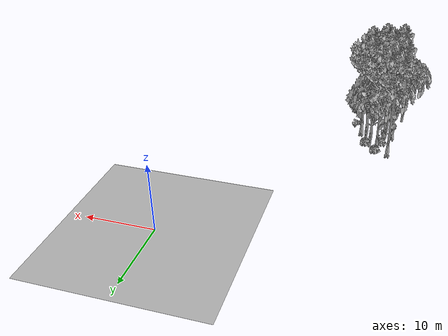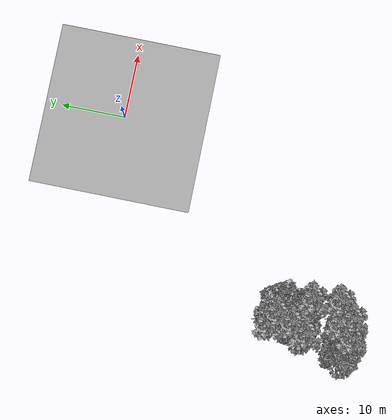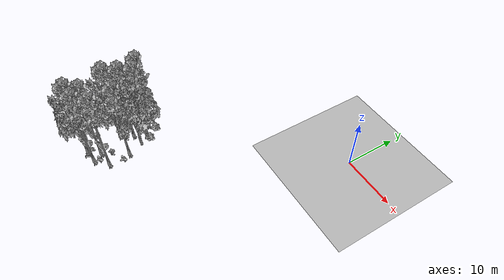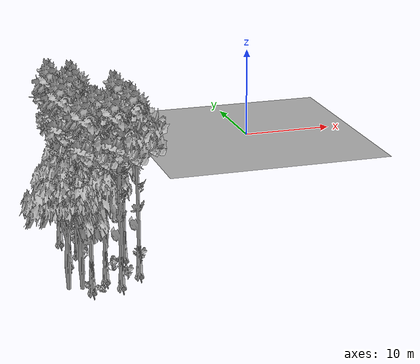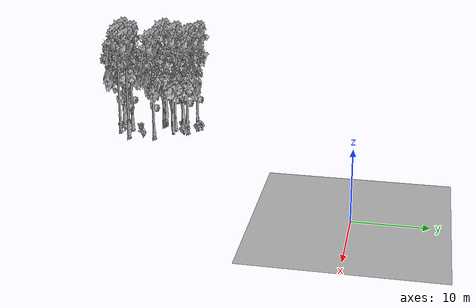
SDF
<sdf version="1.7">
 <world name="default">
  <model name="ground_plane">
   <static>1</static>
   <link name="link">
    <collision name="collision">
     <pose>-50 0 0 0 -0 0</pose>
     <geometry><plane><normal>0 0 1</normal><size>80 80</size></plane></geometry>
     <surface><contact><ode><min_depth>0.01</min_depth><max_vel>0</max_vel></ode></contact></surface>
    </collision>
    <visual name="grass">
     <cast_shadows>0</cast_shadows>
     <geometry>
      <mesh>
       <scale>0.46714285714285714 0.46714285714285714 0.1</scale>
       <uri>file://grass_plane/meshes/grass_plane.dae</uri>
      </mesh>
     </geometry>
    </visual>
   </link>
  </model>
  <model name="Tree 18">
   <static>1</static>
   <pose>-25.525492926385198 -28.110148327706312 0 1.57079 -0 0</pose>
   <link name="link">
    <collision name="collision">
     <geometry><mesh><scale>3.5 5 3.5</scale><uri>model://tree_9/meshes/tree_9.obj</uri></mesh></geometry>
    </collision>
    <visual name="visual">
     <geometry><mesh><scale>3.5 5 3.5</scale><uri>model://tree_9/meshes/tree_9.obj</uri></mesh></geometry>
    </visual>
   </link>
  </model>
  <model name="Tree 51">
   <static>1</static>
   <pose>-25.332654843398675 -37.10604299369229 0 1.57079 -0 0</pose>
   <link name="link">
    <collision name="collision">
     <geometry><mesh><scale>3.5 5 3.5</scale><uri>model://tree_9/meshes/tree_9.obj</uri></mesh></geometry>
    </collision>
    <visual name="visual">
     <geometry><mesh><scale>3.5 5 3.5</scale><uri>model://tree_9/meshes/tree_9.obj</uri></mesh></geometry>
    </visual>
   </link>
  </model>
  <model name="Tree 85">
   <static>1</static>
   <pose>-26.419997721781822 -30.37566426830179 0 1.57079 -0 0</pose>
   <link name="link">
    <collision name="collision">
     <geometry><mesh><scale>3.5 5 3.5</scale><uri>model://tree_9/meshes/tree_9.obj</uri></mesh></geometry>
    </collision>
    <visual name="visual">
     <geometry><mesh><scale>3.5 5 3.5</scale><uri>model://tree_9/meshes/tree_9.obj</uri></mesh></geometry>
    </visual>
   </link>
  </model>
  <model name="Tree 91">
   <static>1</static>
   <pose>-24.302952717097057 -38.77902548727643 0 1.57079 -0 0</pose>
   <link name="link">
    <collision name="collision">
     <geometry><mesh><scale>3.5 5 3.5</scale><uri>model://tree_9/meshes/tree_9.obj</uri></mesh></geometry>
    </collision>
    <visual name="visual">
     <geometry><mesh><scale>3.5 5 3.5</scale><uri>model://tree_9/meshes/tree_9.obj</uri></mesh></geometry>
    </visual>
   </link>
  </model>
  <model name="Tree 110">
   <static>1</static>
   <pose>-27.829285310182065 -38.66490837212489 0 1.57079 -0 0</pose>
   <link name="link">
    <collision name="collision">
     <geometry><mesh><scale>3.5 5 3.5</scale><uri>model://tree_2/meshes/tree_2.obj</uri></mesh></geometry>
    </collision>
    <visual name="visual">
     <geometry><mesh><scale>3.5 5 3.5</scale><uri>model://tree_2/meshes/tree_2.obj</uri></mesh></geometry>
    </visual>
   </link>
  </model>
  <model name="Tree 201">
   <static>1</static>
   <pose>-26.98331747797536 -39.04896697831635 0 1.57079 -0 0</pose>
   <link name="link">
    <collision name="collision">
     <geometry><mesh><scale>3.5 5 3.5</scale><uri>model://tree_9/meshes/tree_9.obj</uri></mesh></geometry>
    </collision>
    <visual name="visual">
     <geometry><mesh><scale>3.5 5 3.5</scale><uri>model://tree_9/meshes/tree_9.obj</uri></mesh></geometry>
    </visual>
   </link>
  </model>
  <model name="Tree 235">
   <static>1</static>
   <pose>-23.675036633664273 -29.950213161639425 0 1.57079 -0 0</pose>
   <link name="link">
    <collision name="collision">
     <geometry><mesh><scale>3.5 5 3.5</scale><uri>model://tree_2/meshes/tree_2.obj</uri></mesh></geometry>
    </collision>
    <visual name="visual">
     <geometry><mesh><scale>3.5 5 3.5</scale><uri>model://tree_2/meshes/tree_2.obj</uri></mesh></geometry>
    </visual>
   </link>
  </model>
  <model name="Tree 255">
   <static>1</static>
   <pose>-22.18213021348137 -36.70862447968744 0 1.57079 -0 0</pose>
   <link name="link">
    <collision name="collision">
     <geometry><mesh><scale>3.5 5 3.5</scale><uri>model://tree_9/meshes/tree_9.obj</uri></mesh></geometry>
    </collision>
    <visual name="visual">
     <geometry><mesh><scale>3.5 5 3.5</scale><uri>model://tree_9/meshes/tree_9.obj</uri></mesh></geometry>
    </visual>
   </link>
  </model>
  <model name="Tree 300">
   <static>1</static>
   <pose>-24.500904296040687 -28.474329627272592 0 1.57079 -0 0</pose>
   <link name="link">
    <collision name="collision">
     <geometry><mesh><scale>3.5 5 3.5</scale><uri>model://tree_2/meshes/tree_2.obj</uri></mesh></geometry>
    </collision>
    <visual name="visual">
     <geometry><mesh><scale>3.5 5 3.5</scale><uri>model://tree_2/meshes/tree_2.obj</uri></mesh></geometry>
    </visual>
   </link>
  </model>
  <model name="Tree 369">
   <static>1</static>
   <pose>-27.355893987682144 -26.951729278231387 0 1.57079 -0 0</pose>
   <link name="link">
    <collision name="collision">
     <geometry><mesh><scale>3.5 5 3.5</scale><uri>model://tree_9/meshes/tree_9.obj</uri></mesh></geometry>
    </collision>
    <visual name="visual">
     <geometry><mesh><scale>3.5 5 3.5</scale><uri>model://tree_9/meshes/tree_9.obj</uri></mesh></geometry>
    </visual>
   </link>
  </model>
  <model name="Tree 378">
   <static>1</static>
   <pose>-22.575694558112637 -32.746667601525616 0 1.57079 -0 0</pose>
   <link name="link">
    <collision name="collision">
     <geometry><mesh><scale>3.5 5 3.5</scale><uri>model://tree_9/meshes/tree_9.obj</uri></mesh></geometry>
    </collision>
    <visual name="visual">
     <geometry><mesh><scale>3.5 5 3.5</scale><uri>model://tree_9/meshes/tree_9.obj</uri></mesh></geometry>
    </visual>
   </link>
  </model>
  <model name="Tree 545">
   <static>1</static>
   <pose>-28.97283358777635 -38.39211539578997 0 1.57079 -0 0</pose>
   <link name="link">
    <collision name="collision">
     <geometry><mesh><scale>3.5 5 3.5</scale><uri>model://tree_2/meshes/tree_2.obj</uri></mesh></geometry>
    </collision>
    <visual name="visual">
     <geometry><mesh><scale>3.5 5 3.5</scale><uri>model://tree_2/meshes/tree_2.obj</uri></mesh></geometry>
    </visual>
   </link>
  </model>
  <model name="Tree 557">
   <static>1</static>
   <pose>-26.71970151706096 -31.851340997629663 0 1.57079 -0 0</pose>
   <link name="link">
    <collision name="collision">
     <geometry><mesh><scale>3.5 5 3.5</scale><uri>model://tree_2/meshes/tree_2.obj</uri></mesh></geometry>
    </collision>
    <visual name="visual">
     <geometry><mesh><scale>3.5 5 3.5</scale><uri>model://tree_2/meshes/tree_2.obj</uri></mesh></geometry>
    </visual>
   </link>
  </model>
  <model name="Tree 569">
   <static>1</static>
   <pose>-27.644495536950142 -32.60351999426738 0 1.57079 -0 0</pose>
   <link name="link">
    <collision name="collision">
     <geometry><mesh><scale>3.5 5 3.5</scale><uri>model://tree_9/meshes/tree_9.obj</uri></mesh></geometry>
    </collision>
    <visual name="visual">
     <geometry><mesh><scale>3.5 5 3.5</scale><uri>model://tree_9/meshes/tree_9.obj</uri></mesh></geometry>
    </visual>
   </link>
  </model>
  <model name="Bush 27">
   <static>1</static>
   <pose>-26.258543405906515 -32.01921604301248 0 1.57079 -0 0</pose>
   <link name="link">
    <collision name="collision">
     <geometry><mesh><scale>2 2 2</scale><uri>model://bush_4/meshes/bush_4.obj</uri></mesh></geometry>
     <surface><contact><collide_without_contact>false</collide_without_contact></contact></surface>
    </collision>
    <visual name="visual">
     <geometry><mesh><scale>2 2 2</scale><uri>model://bush_4/meshes/bush_4.obj</uri></mesh></geometry>
    </visual>
   </link>
  </model>
  <model name="Bush 180">
   <static>1</static>
   <pose>-25.424793475125142 -26.32336520158045 0 1.57079 -0 0</pose>
   <link name="link">
    <collision name="collision">
     <geometry><mesh><scale>2 2 2</scale><uri>model://bush_1/meshes/bush_1.obj</uri></mesh></geometry>
     <surface><contact><collide_without_contact>false</collide_without_contact></contact></surface>
    </collision>
    <visual name="visual">
     <geometry><mesh><scale>2 2 2</scale><uri>model://bush_1/meshes/bush_1.obj</uri></mesh></geometry>
    </visual>
   </link>
  </model>
  <model name="Bush 200">
   <static>1</static>
   <pose>-26.355805986416456 -39.377504016796976 0 1.57079 -0 0</pose>
   <link name="link">
    <collision name="collision">
     <geometry><mesh><scale>2 2 2</scale><uri>model://bush_2/meshes/bush_2.obj</uri></mesh></geometry>
     <surface><contact><collide_without_contact>false</collide_without_contact></contact></surface>
    </collision>
    <visual name="visual">
     <geometry><mesh><scale>2 2 2</scale><uri>model://bush_2/meshes/bush_2.obj</uri></mesh></geometry>
    </visual>
   </link>
  </model>
  <model name="Bush 289">
   <static>1</static>
   <pose>-24.23394188743021 -35.44248687830266 0 1.57079 -0 0</pose>
   <link name="link">
    <collision name="collision">
     <geometry><mesh><scale>2 2 2</scale><uri>model://bush_4/meshes/bush_4.obj</uri></mesh></geometry>
     <surface><contact><collide_without_contact>false</collide_without_contact></contact></surface>
    </collision>
    <visual name="visual">
     <geometry><mesh><scale>2 2 2</scale><uri>model://bush_4/meshes/bush_4.obj</uri></mesh></geometry>
    </visual>
   </link>
  </model>
  <model name="Bush 420">
   <static>1</static>
   <pose>-23.720061592979036 -28.22699783716193 0 1.57079 -0 0</pose>
   <link name="link">
    <collision name="collision">
     <geometry><mesh><scale>2 2 2</scale><uri>model://bush_1/meshes/bush_1.obj</uri></mesh></geometry>
     <surface><contact><collide_without_contact>false</collide_without_contact></contact></surface>
    </collision>
    <visual name="visual">
     <geometry><mesh><scale>2 2 2</scale><uri>model://bush_1/meshes/bush_1.obj</uri></mesh></geometry>
    </visual>
   </link>
  </model>
  <model name="Bush 435">
   <static>1</static>
   <pose>-27.28709889001611 -38.251305695327076 0 1.57079 -0 0</pose>
   <link name="link">
    <collision name="collision">
     <geometry><mesh><scale>2 2 2</scale><uri>model://bush_2/meshes/bush_2.obj</uri></mesh></geometry>
     <surface><contact><collide_without_contact>false</collide_without_contact></contact></surface>
    </collision>
    <visual name="visual">
     <geometry><mesh><scale>2 2 2</scale><uri>model://bush_2/meshes/bush_2.obj</uri></mesh></geometry>
    </visual>
   </link>
  </model>
  <model name="Bush 468">
   <static>1</static>
   <pose>-21.335390621892348 -34.14360822026529 0 1.57079 -0 0</pose>
   <link name="link">
    <collision name="collision">
     <geometry><mesh><scale>2 2 2</scale><uri>model://bush_0/meshes/bush_0.obj</uri></mesh></geometry>
     <surface><contact><collide_without_contact>false</collide_without_contact></contact></surface>
    </collision>
    <visual name="visual">
     <geometry><mesh><scale>2 2 2</scale><uri>model://bush_0/meshes/bush_0.obj</uri></mesh></geometry>
    </visual>
   </link>
  </model>
  <model name="Bush 505">
   <static>1</static>
   <pose>-23.486080718885447 -37.811334193217306 0 1.57079 -0 0</pose>
   <link name="link">
    <collision name="collision">
     <geometry><mesh><scale>2 2 2</scale><uri>model://bush_0/meshes/bush_0.obj</uri></mesh></geometry>
     <surface><contact><collide_without_contact>false</collide_without_contact></contact></surface>
    </collision>
    <visual name="visual">
     <geometry><mesh><scale>2 2 2</scale><uri>model://bush_0/meshes/bush_0.obj</uri></mesh></geometry>
    </visual>
   </link>
  </model>
  <model name="Bush 513">
   <static>1</static>
   <pose>-26.14288497401592 -28.915207888583314 0 1.57079 -0 0</pose>
   <link name="link">
    <collision name="collision">
     <geometry><mesh><scale>2 2 2</scale><uri>model://bush_1/meshes/bush_1.obj</uri></mesh></geometry>
     <surface><contact><collide_without_contact>false</collide_without_contact></contact></surface>
    </collision>
    <visual name="visual">
     <geometry><mesh><scale>2 2 2</scale><uri>model://bush_1/meshes/bush_1.obj</uri></mesh></geometry>
    </visual>
   </link>
  </model>
 </world>
</sdf>
